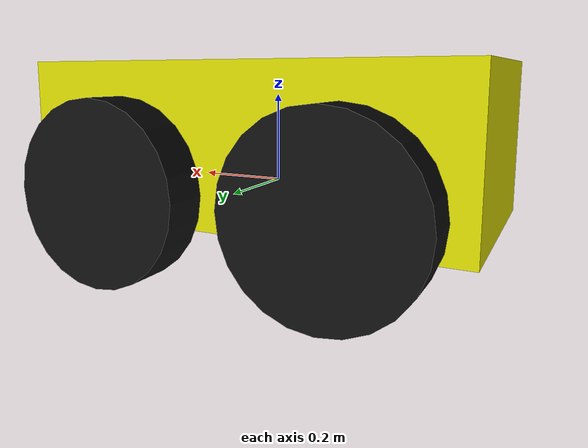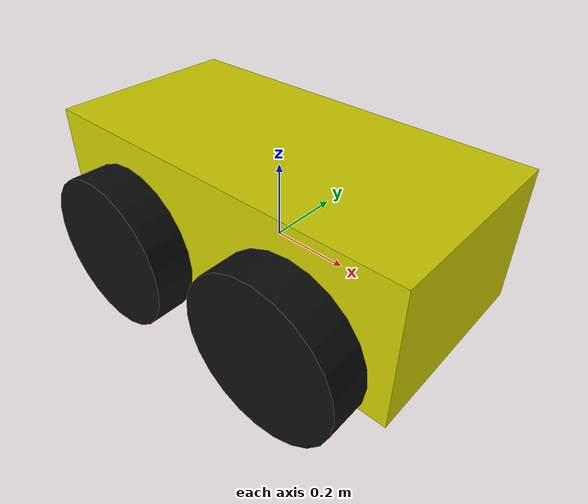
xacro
<?xml version="1.0"?>

<robot name="fourwheelrobot" xmlns:xacro="http://www.ros.org/wiki/xacro" >
    <xacro:property name="radius" value="0.2" />
    <xacro:property name="wheel" value="wheel" />
    <xacro:macro name="wheel_macro" params="rpy name joint_origin_xyz">
        <link name="${name}">
          <inertial>
            <origin xyz="0 0 0.5" rpy="${rpy}" />
            <mass value="1.0"/>
            <inertia ixx="0.0" ixy="0.0" ixz="0.0" iyy="0.0" iyz="0.0" izz="0.0"/>
          </inertial>
          <visual name="">
              <origin xyz="0 0 0" rpy="${rpy}" />
              <geometry>
                <cylinder length="0.1" radius="${radius}" />
              </geometry>
              <material name="black">
                <color rgba="0.05 0.05 0.05 1"/>
              <texture filename=""/>
            </material>
          </visual>
          <collision>
            <origin xyz="0 0 0" rpy="${rpy}" />
            <geometry>
              <cylinder length="0.1" radius="${radius}" />
            </geometry>
          </collision>
        </link>

        <joint name="joint_${name}" type="continuous">
          <parent link="base_link"/>
          <child link="${name}"/>
          <origin xyz="${joint_origin_xyz}" rpy="0 0 0" />
          <axis xyz="0 1 0" rpy="0 0 0" />
        </joint>

        <gazebo reference="${name}">
          <mu1 value="200.0"/>
          <mu2 value="100.0"/>
          <kp value="10000000.0" />
          <kd value="1.0" />
          <material>Gazebo/Grey</material>
        </gazebo>

        <transmission name="trnasm_${name}">
          <type>transmission_interface/SimpleTransmission</type>
          <actuator name="$act_${name}">
            <mechanicalReduction>1</mechanicalReduction>
          </actuator>
          <joint name="joint_${name}">
            <hardwareInterface>VelocityJointInterface</hardwareInterface>
          </joint>
        </transmission>
    </xacro:macro>

  <!-- Base link -->
  <link name="base_link">
    <visual>
      <origin xyz="0 0 0.1" rpy="0 0 0" />
      <geometry>
          <box size="1 0.5 0.35"/>
      </geometry>
      <material name="yellow">
        <color rgba="0.8 0.8 0 1"/>
      </material>
    </visual>
  </link>
  <!-- Front Right Wheel -->
  <xacro:wheel_macro rpy="1.570795 0 0" name="f_r_${wheel}" joint_origin_xyz="0.25 -0.30 0"/>

  <!-- Back Right Wheel -->
  <xacro:wheel_macro rpy="1.570795 0 0" name="b_r_${wheel}" joint_origin_xyz="-0.25 -0.30 0"/>

  <!-- Front Left Wheel -->
  <xacro:wheel_macro rpy="1.570795 0 0" name="f_l_${wheel}" joint_origin_xyz="0.25 0.30 0"/>

  <!-- Back Left Wheel -->
  <xacro:wheel_macro rpy="1.570795 0 0" name="b_l_${wheel}" joint_origin_xyz="-0.25 0.30 0" />

  <!-- Gazebo plugin for ROS Control -->
  <gazebo>
    <plugin name="gazebo_ros_control" filename="libgazebo_ros_control.so">
        <robotNamespace>/mugator_manip</robotNamespace>
        <robotSimType>gazebo_ros_control/DefaultRobotHWSim</robotSimType>
        <legacyModeNS>true</legacyModeNS>
    </plugin>
  </gazebo>
  </robot>
